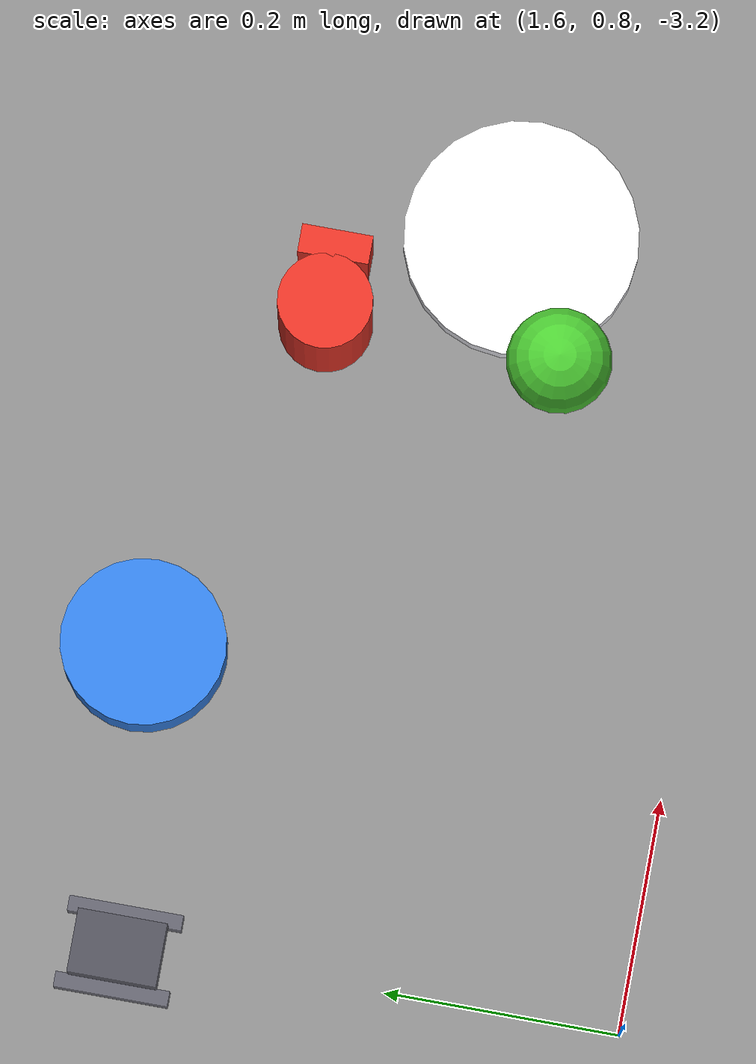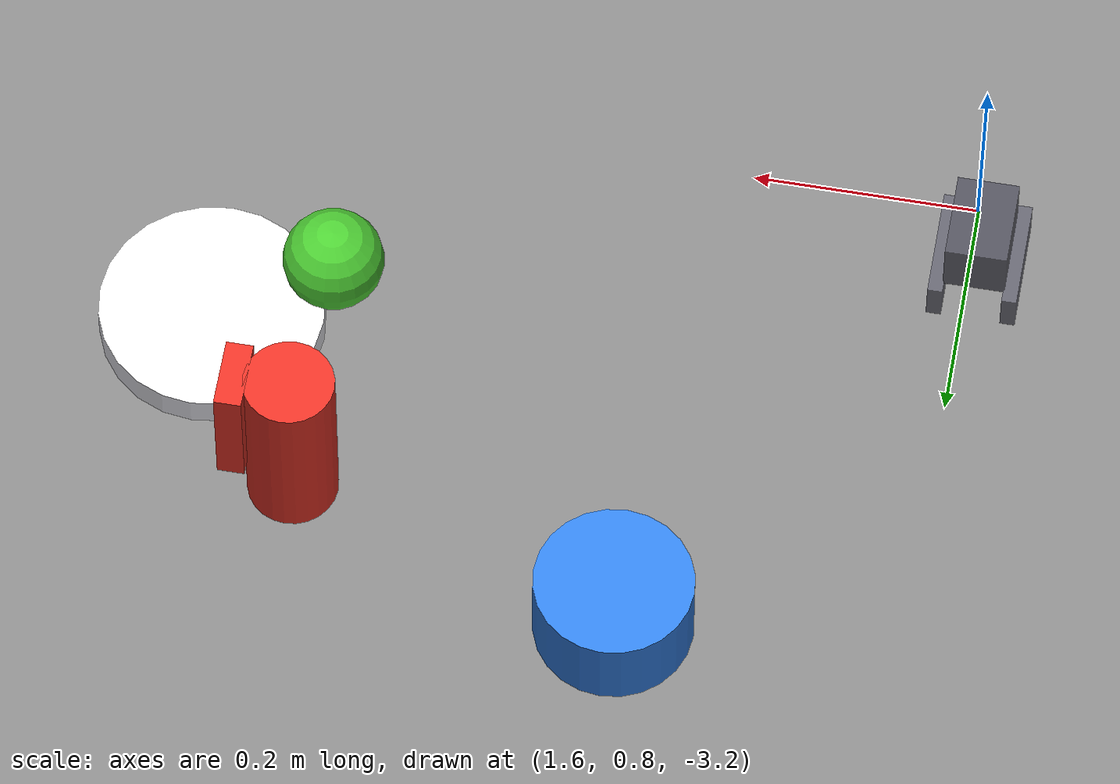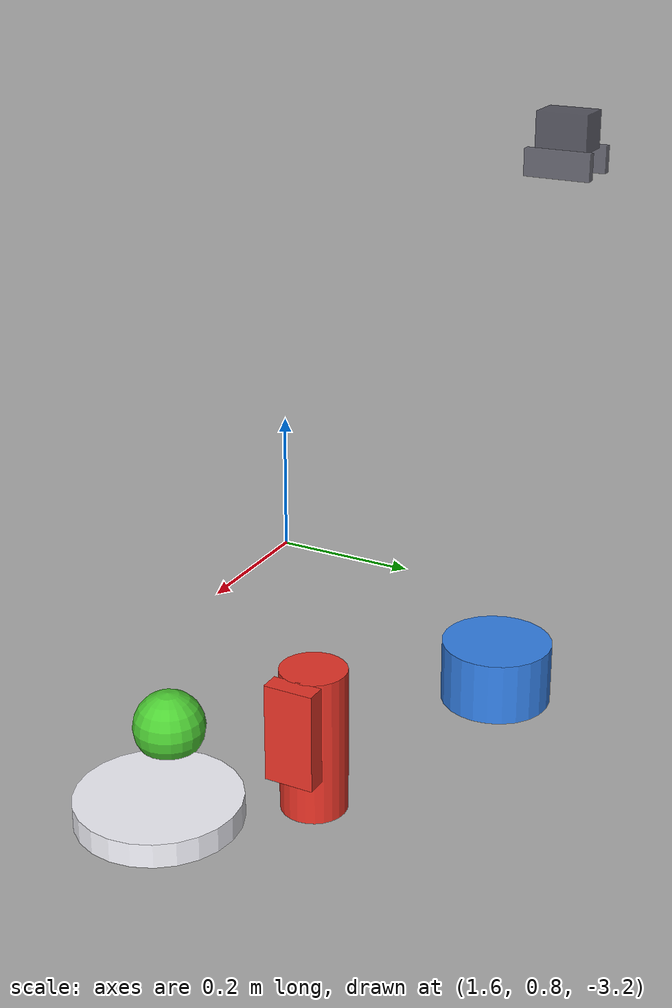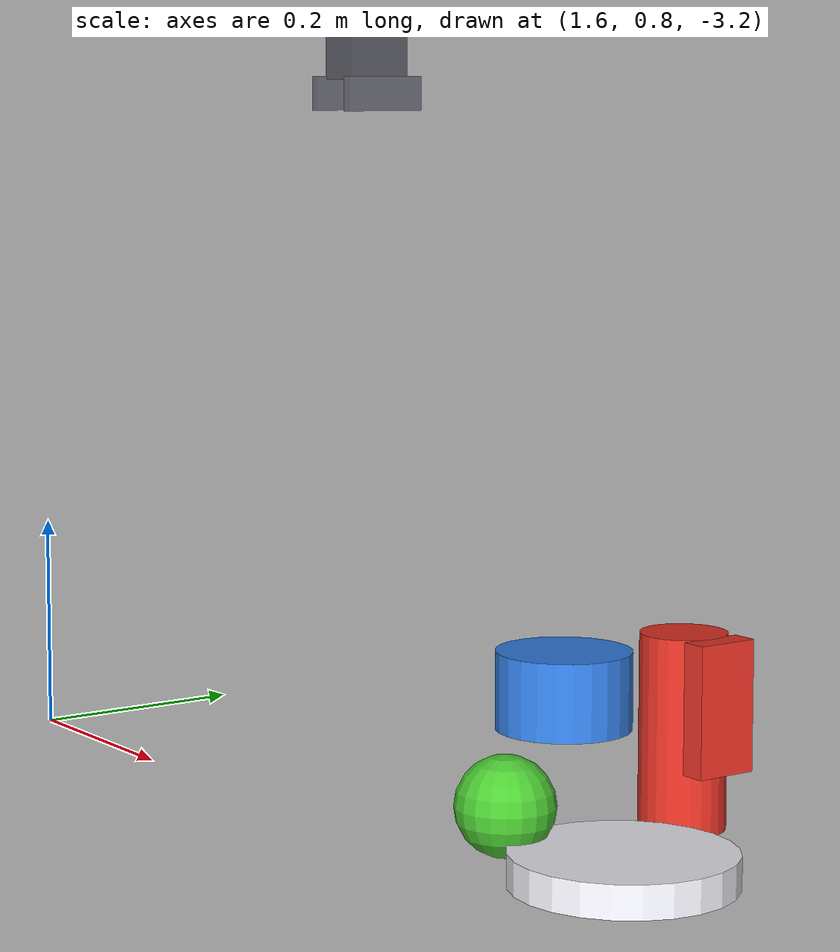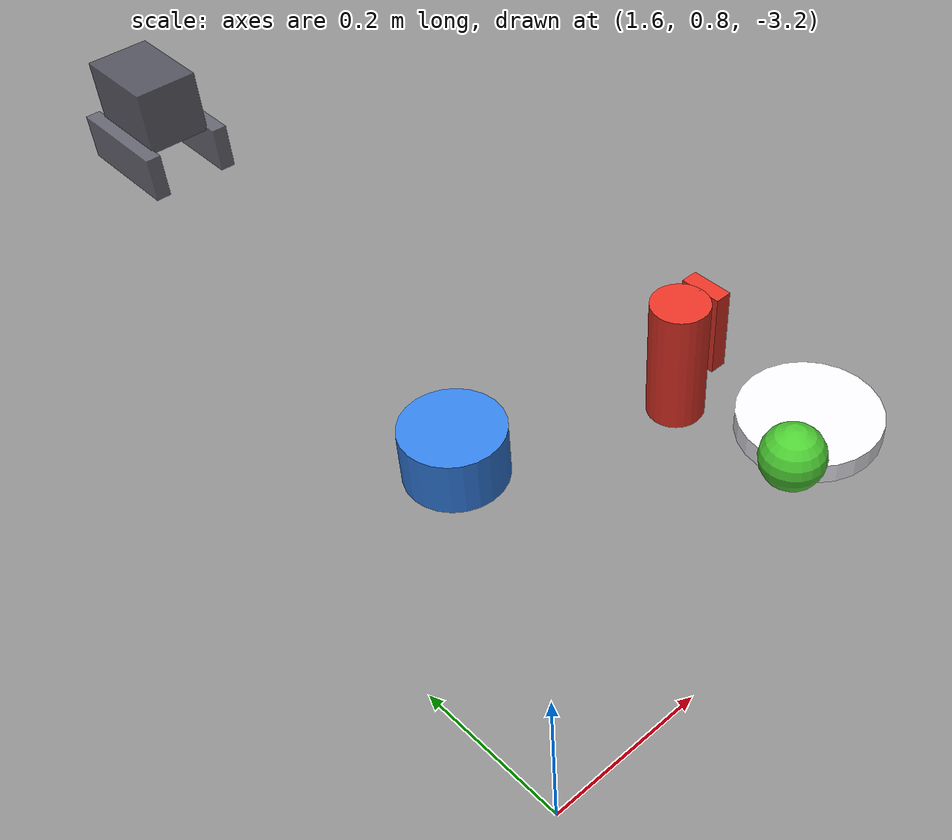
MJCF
<mujoco model="first_person_kitchen">
  <compiler angle="radian"/>
  <option timestep="0.002" gravity="0 0 -9.81"/>

  <visual>
    <global offwidth="640" offheight="480"/>
    <quality shadowsize="4096"/>
  </visual>

  <asset>
    <texture name="grid" type="2d" builtin="checker" width="512" height="512" rgb1=".1 .2 .3" rgb2=".2 .3 .4"/>
    <material name="grid" texture="grid" texrepeat="1 1" texuniform="true"/>
  </asset>

  <worldbody>
    <light pos="2 0 0" dir="-0.5 0 -1" directional="false"/>
    <light pos="1.5 1 -1" dir="0 -0.3 -1" directional="false"/>
    <geom name="floor" type="plane" size="5 5 0.1" material="grid"/>

    <!-- First-person camera (Camera 117 from kitchen.ply) -->
    <!-- Directly in world frame for exact alignment -->
    <!-- FOV: 35.55° (from fx=3231.58, fy=3240.81, image=3115x2078) -->
    <!-- xyaxes: xaxis (right) + yaxis (up), derived from rotation matrix -->
    <camera name="wrist_cam"
            pos="1.563101 1.205030 -2.343449"
            xyaxes="0.760188 -0.366818 0.536245 0.413893 0.909633 0.035494"
            fovy="35.55"/>

    <!-- Robot gripper in view (slightly below camera) -->
    <body name="wrist" pos="1.563101 1.205030 -2.543449">
      <!-- Gripper base -->
      <geom name="gripper_base" type="box" size="0.025 0.035 0.025"
            rgba="0.3 0.3 0.35 0.8" pos="0 0 0"/>

      <!-- Left finger -->
      <body name="left_finger" pos="-0.03 0 -0.04">
        <geom name="gripper_left" type="box" size="0.006 0.045 0.018"
              rgba="0.4 0.4 0.45 0.85"/>
      </body>

      <!-- Right finger -->
      <body name="right_finger" pos="0.03 0 -0.04">
        <geom name="gripper_right" type="box" size="0.006 0.045 0.018"
              rgba="0.4 0.4 0.45 0.85"/>
      </body>
    </body>

    <!-- Desktop objects (positioned near yellow excavator in view) -->
    <!-- Camera at [1.56, 1.21, -2.34], looking forward-down -->
    <!-- Place objects on tabletop in front of camera -->

    <!-- Table surface (invisible collision) -->
    <geom name="table" type="box" size="0.6 0.4 0.02"
          pos="2.0 1.1 -3.25" rgba="0.6 0.5 0.4 0"/>

    <!-- Red mug - next to excavator -->
    <body name="mug" pos="2.15 1.15 -3.15">
      <joint type="free"/>
      <geom name="mug_body" type="cylinder" size="0.04 0.09"
            rgba="0.9 0.2 0.15 1" mass="0.2"/>
      <geom name="mug_handle" type="box" size="0.012 0.03 0.06"
            rgba="0.9 0.2 0.15 1" pos="0.048 0 0.03" mass="0.02"/>
    </body>

    <!-- Blue bowl - left side -->
    <body name="bowl" pos="1.85 1.25 -3.18">
      <joint type="free"/>
      <geom name="bowl_geom" type="cylinder" size="0.07 0.04"
            rgba="0.2 0.5 0.9 1" mass="0.18"/>
    </body>

    <!-- White plate - back -->
    <body name="plate" pos="2.25 1.0 -3.23">
      <geom name="plate_geom" type="cylinder" size="0.10 0.015"
            rgba="0.95 0.95 0.98 1" mass="0.15"/>
    </body>

    <!-- Green apple - right side -->
    <body name="apple" pos="2.15 0.95 -3.19">
      <joint type="free"/>
      <geom name="apple_geom" type="sphere" size="0.045"
            rgba="0.3 0.8 0.2 1" mass="0.1"/>
    </body>
  </worldbody>
</mujoco>
